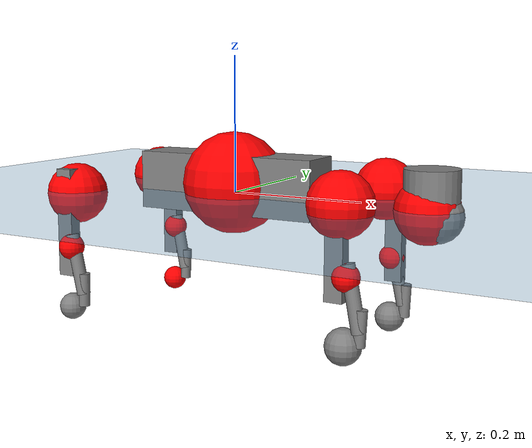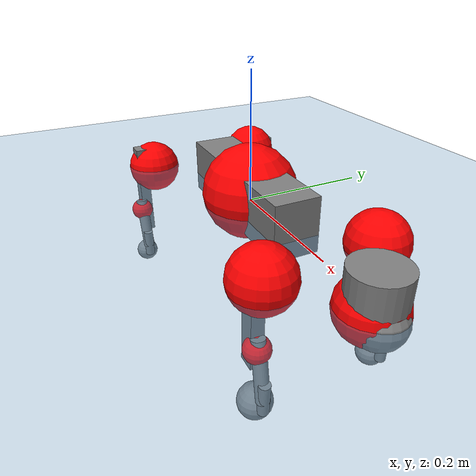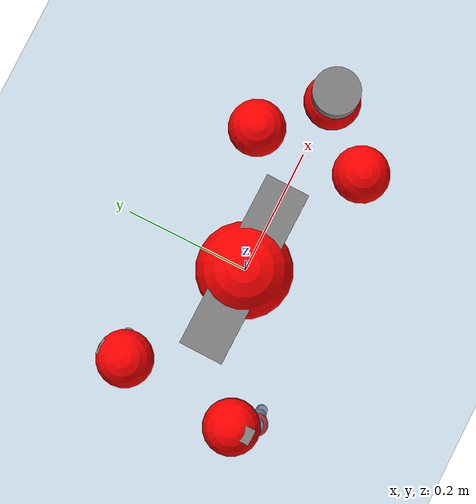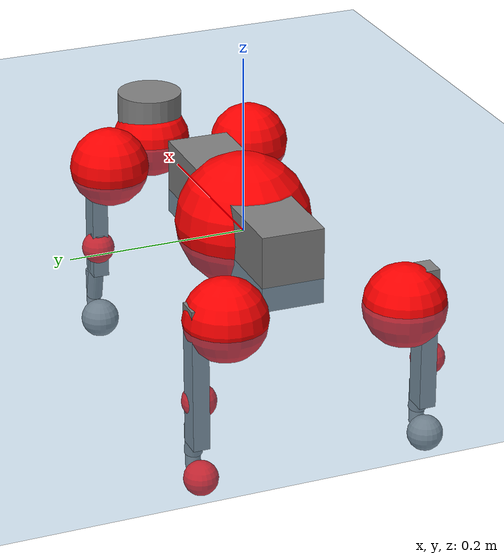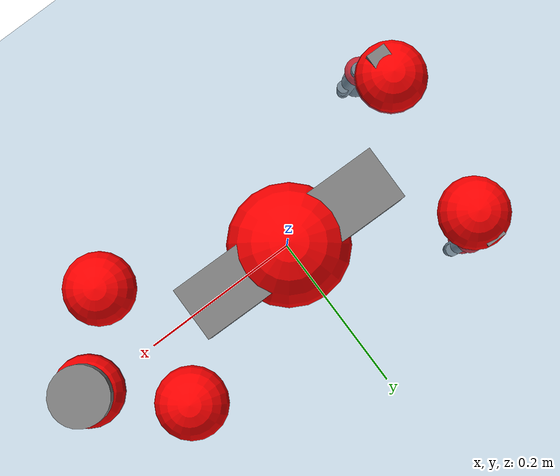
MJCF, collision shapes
<mujoco model="go2">
  <compiler angle="radian" assetdir="assets" balanceinertia="true" inertiafromgeom="false"/>

  <option timestep="0.005" density="1.2" viscosity="2e-05"/>

  <size nkey="1"/>

  <visual>
    <quality shadowsize="8192"/>
    <map shadowclip="0.5"/>
  </visual>

  <default>
    <default class="/">
      <geom contype="0" conaffinity="0" group="1" solref="-1000 -80"/>
      <site size="0.01 0.005 0.005" group="5"/>
      <general forcelimited="true" biastype="affine" gainprm="20" biasprm="0 -20 -0.5"/>
      <default class="go2">
        <joint armature="0.01" damping="0.01" frictionloss="0.2"/>
        <geom condim="1" margin="0.001"/>
        <default class="visual">
          <geom type="mesh" group="2"/>
        </default>
        <default class="collision">
          <geom group="3"/>
          <default class="foot">
            <geom size="0.022 0 0" condim="6" priority="1" friction="0.8 0.02 0.01" solimp="0.015 1 0.022"/>
          </default>
        </default>
        <default class="reward_collision_sphere">
          <geom group="5" rgba="1 0 0 1"/>
        </default>
      </default>
    </default>
  </default>

  <asset>
    <texture type="skybox" colorspace="auto" name="//unnamed_texture_0" builtin="gradient" rgb1="0.95 0.95 0.95" rgb2="0.95 0.95 0.95" width="100" height="600"/>
    <texture type="2d" colorspace="auto" name="texplane" builtin="checker" rgb1="0.345 0.575 0.748" rgb2="0.345 0.575 0.748" markrgb="1 1 1" width="512" height="512"/>
    <material name="MatPlane" class="/" texture="texplane" texuniform="true" texrepeat="2 2" specular="0.9"/>
    <material name="metal" class="/" rgba="0.9 0.95 0.95 1"/>
    <material name="black" class="/" rgba="0 0 0 1"/>
    <material name="white" class="/"/>
    <material name="gray" class="/" rgba="0.671705 0.692426 0.77427 1"/>
    <mesh name="base_0" class="/" file="base_0.obj"/>
    <mesh name="base_1" class="/" file="base_1.obj"/>
    <mesh name="base_2" class="/" file="base_2.obj"/>
    <mesh name="base_3" class="/" file="base_3.obj"/>
    <mesh name="base_4" class="/" file="base_4.obj"/>
    <mesh name="hip_0" class="/" file="hip_0.obj"/>
    <mesh name="hip_1" class="/" file="hip_1.obj"/>
    <mesh name="thigh_0" class="/" file="thigh_0.obj"/>
    <mesh name="thigh_1" class="/" file="thigh_1.obj"/>
    <mesh name="thigh_mirror_0" class="/" file="thigh_mirror_0.obj"/>
    <mesh name="thigh_mirror_1" class="/" file="thigh_mirror_1.obj"/>
    <mesh name="calf_0" class="/" file="calf_0.obj"/>
    <mesh name="calf_1" class="/" file="calf_1.obj"/>
    <mesh name="calf_mirror_0" class="/" file="calf_mirror_0.obj"/>
    <mesh name="calf_mirror_1" class="/" file="calf_mirror_1.obj"/>
    <mesh name="foot" class="/" file="foot.obj"/>
  </asset>

  <worldbody>
    <geom name="floor" class="/" size="100 100 0.125" type="plane" group="0" material="MatPlane"/>
    <light name="toplight_shadow" class="/" pos="0 0 5" dir="0.0990148 0.0990148 -0.990148" type="directional" ambient="0.04 0.04 0.04" diffuse="0.55 0.55 0.55" specular="0.12 0.12 0.12"/>
    <light name="toplight_fill" class="/" pos="0 0 5" dir="0.0990148 0.0990148 -0.990148" type="directional" castshadow="false" ambient="0.04 0.04 0.04" diffuse="0.3 0.3 0.3" specular="0.08 0.08 0.08"/>
    <body name="trunk" childclass="go2" pos="-0.00231352 0.000766299 0.014659" quat="0.999977 0.00207864 -0.001445 -0.00633225">
      <inertial pos="0.0210083 -0.0117912 -0.000532535" quat="0.0361289 0.698282 -0.0534116 0.712913" mass="2.7025" diaginertia="0.120424 0.0227262 0.000268498"/>
      <joint name="//unnamed_joint_0" type="free" armature="0" damping="0" frictionloss="0"/>
      <geom name="//unnamed_geom_1" class="visual" material="black" mesh="base_0"/>
      <geom name="//unnamed_geom_2" class="visual" material="black" mesh="base_1"/>
      <geom name="//unnamed_geom_3" class="visual" material="black" mesh="base_2"/>
      <geom name="//unnamed_geom_4" class="visual" material="white" mesh="base_3"/>
      <geom name="//unnamed_geom_5" class="visual" material="gray" mesh="base_4"/>
      <geom name="trunk_1" class="collision" size="0.141637 0.0352021 0.0429202" type="box"/>
      <geom name="trunk_2" class="collision" size="0.0376493 0.0338844" pos="0.302931 0 0.0042393" type="cylinder"/>
      <geom name="trunk_3" class="collision" size="0.0353903" pos="0.311434 0 -0.0254358"/>
      <geom name="//unnamed_geom_9" class="reward_collision_sphere" size="0.0752986"/>
      <geom name="//unnamed_geom_10" class="reward_collision_sphere" size="0.0451791" pos="0.297616 0 -0.0190768"/>
      <site name="imu" pos="-0.0443115 -0.0435964 0.0740684" size="0.00752986"/>
      <camera name="track" pos="0 -1.54423 0" quat="0.707107 0.707107 0 0" mode="trackcom"/>
      <camera name="ego_camera" pos="0.331629 0 0.0190768" quat="-0.5 -0.5 0.5 0.5"/>
      <body name="FL_hip" pos="0.204628 0.0302144 -0.00633648" quat="1 0.000374931 -0.000362647 -0.000357211">
        <inertial pos="0.00738043 0.00275874 0.014177" quat="0.541489 0.522764 0.471377 0.459686" mass="0.316248" diaginertia="0.00115147 0.000192154 7.22856e-06"/>
        <joint name="FL_hip_joint" pos="0 0 0" axis="0.998073 -0.0531718 -0.0319857" stiffness="0.0531274" range="-1.05335 0.884347" armature="0.00767516" damping="0.0610835" frictionloss="0.0899223"/>
        <geom name="//unnamed_geom_11" class="visual" material="metal" mesh="hip_0"/>
        <geom name="//unnamed_geom_12" class="visual" material="gray" mesh="hip_1"/>
        <geom name="//unnamed_geom_13" class="collision" size="0.0346373 0.0150597" pos="0 0.061769 0" quat="0.707107 0.707107 0 0" type="cylinder"/>
        <geom name="//unnamed_geom_14" class="reward_collision_sphere" size="0.0451791" pos="0 0.0540479 0"/>
        <body name="FL_thigh" pos="0.0115434 0.0667713 -0.0111972" quat="1 -0.000350967 3.57986e-05 -0.00035153">
          <inertial pos="-0.0037478 -0.0167552 -0.0128134" quat="0.819868 0.105661 -0.0124158 0.562581" mass="0.539933" diaginertia="0.00891027 0.00184958 1.5935e-05"/>
          <joint name="FL_thigh_joint" pos="0 0 0" axis="-0.00703798 0.999975 -0.000117179" stiffness="0.00301446" range="-1.40364 3.5409" armature="0.0109554" damping="0" frictionloss="0.151953"/>
          <geom name="//unnamed_geom_15" class="visual" material="metal" mesh="thigh_0"/>
          <geom name="//unnamed_geom_16" class="visual" material="gray" mesh="thigh_1"/>
          <geom name="//unnamed_geom_17" class="collision" size="0.080193 0.00922407 0.0128008" pos="0 0 -0.0451485" quat="0.707107 0 0.707107 0" type="box"/>
          <body name="FL_calf" pos="-0.00508073 0.000609099 -0.0910222" quat="1 0.000587048 0.000336937 0.000166134">
            <inertial pos="0.0225104 0.0134979 -0.0593717" quat="0.709178 0.000291842 -0.00182242 0.705027" mass="0.104328" diaginertia="0.00237282 0.000394807 7.25048e-07"/>
            <joint name="FL_calf_joint" pos="0 0 0" axis="0.0230881 0.99968 0.010318" stiffness="0.0153407" range="-2.41154 -1.01196" armature="0.00974835" damping="0.0271737" frictionloss="0.0372245"/>
            <geom name="//unnamed_geom_18" class="visual" material="gray" mesh="calf_0"/>
            <geom name="//unnamed_geom_19" class="visual" material="black" mesh="calf_1"/>
            <geom name="FL_calf0" class="collision" size="0.00903583 0.0451791" pos="0.00850332 0 -0.0254358" quat="0.994493 0 -0.104807 0" type="cylinder"/>
            <geom name="//unnamed_geom_21" class="collision" size="0.00828284 0.024472" pos="0.0212583 0 -0.0627416" quat="0.999688 0 0.0249974 0" type="cylinder"/>
            <geom name="//unnamed_geom_22" class="visual" pos="0 0 -0.090297" quat="1 0 0 0" material="black" mesh="foot"/>
            <geom name="FL_foot" class="foot" size="0.0218694" pos="-0.00212583 0 -0.090297"/>
            <geom name="//unnamed_geom_24" class="reward_collision_sphere" size="0.0188246"/>
            <geom name="//unnamed_geom_25" class="reward_collision_sphere" size="0.0188246" pos="-0.00212583 0 -0.090297"/>
            <site name="FL_foot" class="foot" pos="-0.00212583 0 -0.090297" size="0.00752986"/>
          </body>
        </body>
      </body>
      <body name="FR_hip" pos="0.21403 -0.0371489 -0.00474097" quat="0.999972 -0.00713828 0.00234606 0.00058079">
        <inertial pos="0.00064192 -0.00382861 0.0035594" quat="0.529919 0.500971 0.527352 0.436021" mass="0.250996" diaginertia="0.00122672 0.000174234 6.77661e-06"/>
        <joint name="FR_hip_joint" pos="0 0 0" axis="0.99915 -0.0221556 0.0347651" stiffness="0.0599394" range="-0.756327 1.20843" armature="0.00608413" damping="0.0547881" frictionloss="0.079132"/>
        <geom name="//unnamed_geom_26" class="visual" pos="0 3.03323e-09 1.30101e-07" quat="4.63268e-05 1 0 0" material="metal" mesh="hip_0"/>
        <geom name="//unnamed_geom_27" class="visual" pos="0 4.91722e-09 -3.2179e-07" quat="4.63268e-05 1 0 0" material="gray" mesh="hip_1"/>
        <geom name="//unnamed_geom_28" class="collision" size="0.0346373 0.0150597" pos="0 -0.061769 0" quat="0.707107 0.707107 0 0" type="cylinder"/>
        <geom name="//unnamed_geom_29" class="reward_collision_sphere" size="0.0451791" pos="0 -0.0540479 0"/>
        <body name="FR_thigh" pos="0.000324295 -0.0649114 0.00108803" quat="0.999994 0.000381528 -0.000937609 -0.00337706">
          <inertial pos="0.00361345 0.0176219 -0.00846458" quat="0.553033 -0.00551069 0.103687 0.826664" mass="0.4182" diaginertia="0.00791335 0.0018114 1.08399e-05"/>
          <joint name="FR_thigh_joint" pos="0 0 0" axis="-0.000205824 -1 0.000729635" range="-3.50697 1.74203" armature="0.0105168" damping="0.0811987" frictionloss="0.236126"/>
          <geom name="//unnamed_geom_30" class="visual" material="metal" mesh="thigh_mirror_0"/>
          <geom name="//unnamed_geom_31" class="visual" material="gray" mesh="thigh_mirror_1"/>
          <geom name="//unnamed_geom_32" class="collision" size="0.080193 0.00922407 0.0128008" pos="0 0 -0.0451485" quat="0.707107 0 0.707107 0" type="box"/>
          <body name="FR_calf" pos="0.0144751 -0.00127115 -0.0921639" quat="0.999998 0.000289667 0.000673904 -0.00170717">
            <inertial pos="0.0112309 0.0137796 -0.0713744" quat="0.704799 0.0149616 -0.0726256 0.705521" mass="0.124687" diaginertia="0.0023921 0.000394785 9.48765e-07"/>
            <joint name="FR_calf_joint" pos="0 0 0" axis="-0.0107986 -0.999924 -0.0058923" stiffness="0.0199433" range="0.843968 2.7695" armature="0.00784319" damping="0.0555996" frictionloss="0.207834"/>
            <geom name="//unnamed_geom_33" class="visual" material="gray" mesh="calf_mirror_0"/>
            <geom name="//unnamed_geom_34" class="visual" material="black" mesh="calf_mirror_1"/>
            <geom name="FR_calf0" class="collision" size="0.00978881 0.0451791" pos="0.0106291 0 -0.0254358" quat="0.995004 0 -0.0998334 0" type="cylinder"/>
            <geom name="//unnamed_geom_36" class="collision" size="0.00828284 0.024472" pos="0.0212583 0 -0.0627416" quat="0.999688 0 0.0249974 0" type="cylinder"/>
            <geom name="//unnamed_geom_37" class="visual" pos="0 0 -0.090297" quat="1 0 0 0" material="black" mesh="foot"/>
            <geom name="FR_foot" class="foot" size="0.0247225" pos="-0.00212583 0 -0.090297"/>
            <geom name="//unnamed_geom_39" class="reward_collision_sphere" size="0.0188246"/>
            <geom name="//unnamed_geom_40" class="reward_collision_sphere" size="0.0188246" pos="-0.00212583 0 -0.090297"/>
            <site name="FR_foot" class="foot" pos="-0.00212583 0 -0.090297" size="0.00752986"/>
          </body>
        </body>
      </body>
      <body name="RL_hip" pos="-0.203535 0.0458302 -0.0103457" quat="0.999997 -0.00121445 -0.00193428 -0.00129159">
        <inertial pos="0.0109588 0.014607 0.0146899" quat="0.494709 0.522475 0.499973 0.481985" mass="0.328752" diaginertia="0.00145413 0.000166617 8.29217e-06"/>
        <joint name="RL_hip_joint" pos="0 0 0" axis="-0.99806 0.0591729 -0.0193679" range="-0.795886 0.779057" armature="0.00289308" damping="0.0060774" frictionloss="0.142775"/>
        <geom name="//unnamed_geom_41" class="visual" pos="-5.56657e-09 0 -1.09118e-06" quat="4.63268e-05 0 1 0" material="metal" mesh="hip_0"/>
        <geom name="//unnamed_geom_42" class="visual" pos="-9.02408e-09 0 -9.67718e-07" quat="4.63268e-05 0 1 0" material="gray" mesh="hip_1"/>
        <geom name="//unnamed_geom_43" class="collision" size="0.0346373 0.0150597" pos="0 0.061769 0" quat="0.707107 0.707107 0 0" type="cylinder"/>
        <geom name="//unnamed_geom_44" class="reward_collision_sphere" size="0.0451791" pos="0 0.0540479 0"/>
        <body name="RL_thigh" pos="0.000240044 0.0861382 -0.0144022" quat="0.999986 -0.00360765 0.00167901 0.00346157">
          <inertial pos="-0.0193984 -0.0066551 0.00140639" quat="0.828945 0.0842574 -0.0195161 0.552602" mass="0.397815" diaginertia="0.00536174 0.00124199 8.43354e-06"/>
          <joint name="RL_thigh_joint" pos="0 0 0" axis="0.00138469 0.997063 -0.0765729" range="-0.335152 4.51934" armature="0.00661381" damping="0.0827699" frictionloss="0.0968822"/>
          <geom name="//unnamed_geom_45" class="visual" material="metal" mesh="thigh_0"/>
          <geom name="//unnamed_geom_46" class="visual" material="gray" mesh="thigh_1"/>
          <geom name="//unnamed_geom_47" class="collision" size="0.080193 0.00922407 0.0128008" pos="0 0 -0.0451485" quat="0.707107 0 0.707107 0" type="box"/>
          <body name="RL_calf" pos="0.00909431 -0.00587957 -0.0790306" quat="0.999984 -0.000573007 0.00153664 0.00539225">
            <inertial pos="0.0209959 -0.0105466 -0.0450421" quat="0.668184 -0.028079 -0.0130371 0.743351" mass="0.115167" diaginertia="0.00231339 0.000498109 7.51529e-07"/>
            <joint name="RL_calf_joint" pos="0 0 0" axis="0.00376792 0.999988 -0.00318887" stiffness="0.0161771" range="-2.78432 -0.522261" armature="0.00283505" damping="0.0779362" frictionloss="0.143504"/>
            <geom name="//unnamed_geom_48" class="visual" material="gray" mesh="calf_0"/>
            <geom name="//unnamed_geom_49" class="visual" material="black" mesh="calf_1"/>
            <geom name="RL_calf0" class="collision" size="0.00978881 0.0451791" pos="0.0106291 0 -0.0254358" quat="0.995004 0 -0.0998334 0" type="cylinder"/>
            <geom name="//unnamed_geom_51" class="collision" size="0.00828284 0.024472" pos="0.0212583 0 -0.0627416" quat="0.999688 0 0.0249974 0" type="cylinder"/>
            <geom name="//unnamed_geom_52" class="visual" pos="0 0 -0.090297" quat="1 0 0 0" material="black" mesh="foot"/>
            <geom name="RL_foot" class="foot" size="0.0127661" pos="-0.00212583 0 -0.090297"/>
            <geom name="//unnamed_geom_54" class="reward_collision_sphere" size="0.0188246"/>
            <geom name="//unnamed_geom_55" class="reward_collision_sphere" size="0.0188246" pos="-0.00212583 0 -0.090297"/>
            <site name="RL_foot" class="foot" pos="-0.00212583 0 -0.090297" size="0.00752986"/>
          </body>
        </body>
      </body>
      <body name="RR_hip" pos="-0.221216 -0.0386043 -0.0197196" quat="0.999999 -0.0010174 -0.000759523 0.000427869">
        <inertial pos="0.0173723 0.00742064 -0.00160022" quat="0.543147 0.447005 0.494359 0.510672" mass="0.283359" diaginertia="0.000808784 0.000133484 4.82377e-06"/>
        <joint name="RR_hip_joint" pos="0 0 0" axis="-0.996893 -0.0522099 0.0589776" range="-0.901502 1.04005" armature="0.0076232" damping="0.0234213" frictionloss="0.0336578"/>
        <geom name="//unnamed_geom_56" class="visual" pos="5.5565e-09 3.03323e-09 -1.22128e-06" quat="2.14617e-09 4.63268e-05 4.63268e-05 -1" material="metal" mesh="hip_0"/>
        <geom name="//unnamed_geom_57" class="visual" pos="9.04898e-09 4.91722e-09 -6.45928e-07" quat="2.14617e-09 4.63268e-05 4.63268e-05 -1" material="gray" mesh="hip_1"/>
        <geom name="//unnamed_geom_58" class="collision" size="0.0346373 0.0150597" pos="0 -0.061769 0" quat="0.707107 0.707107 0 0" type="cylinder"/>
        <geom name="//unnamed_geom_59" class="reward_collision_sphere" size="0.0451791" pos="0 -0.0540479 0"/>
        <body name="RR_thigh" pos="0.00232655 -0.0789362 0.00428522" quat="0.999999 -0.000898604 -0.000250879 -0.00063873">
          <inertial pos="-0.0108442 0.0254045 -0.000818224" quat="0.562325 -0.00682698 0.0396153 0.825938" mass="0.623868" diaginertia="0.00726812 0.00169793 1.2161e-05"/>
          <joint name="RR_thigh_joint" pos="0 0 0" axis="0.0293603 -0.9994 -0.0183514" range="-4.53019 0.746137" armature="0.00825545" damping="0.0321863" frictionloss="0.185013"/>
          <geom name="//unnamed_geom_60" class="visual" material="metal" mesh="thigh_mirror_0"/>
          <geom name="//unnamed_geom_61" class="visual" material="gray" mesh="thigh_mirror_1"/>
          <geom name="//unnamed_geom_62" class="collision" size="0.080193 0.00922407 0.0128008" pos="0 0 -0.0451485" quat="0.707107 0 0.707107 0" type="box"/>
          <body name="RR_calf" pos="0.013874 -0.0109864 -0.0797147" quat="0.999969 0.00265659 -0.00597282 0.00444964">
            <inertial pos="0.00128389 -0.000823913 -0.0607034" quat="0.709799 0.0256148 0.0600329 0.701374" mass="0.0954319" diaginertia="0.00186041 0.00032057 7.56332e-07"/>
            <joint name="RR_calf_joint" pos="0 0 0" axis="0.0505276 -0.997136 0.0562682" stiffness="0.0690194" range="0.587024 2.81048" armature="0.00770141" damping="0.072609" frictionloss="0.186111"/>
            <geom name="//unnamed_geom_63" class="visual" material="gray" mesh="calf_mirror_0"/>
            <geom name="//unnamed_geom_64" class="visual" material="black" mesh="calf_mirror_1"/>
            <geom name="RR_calf0" class="collision" size="0.00978881 0.0451791" pos="0.0106291 0 -0.0254358" quat="0.995004 0 -0.0998334 0" type="cylinder"/>
            <geom name="//unnamed_geom_66" class="collision" size="0.00828284 0.024472" pos="0.0212583 0 -0.0627416" quat="0.999688 0 0.0249974 0" type="cylinder"/>
            <geom name="//unnamed_geom_67" class="visual" pos="0 0 -0.090297" quat="1 0 0 0" material="black" mesh="foot"/>
            <geom name="RR_foot" class="foot" size="0.0194813" pos="-0.00212583 0 -0.090297"/>
            <geom name="//unnamed_geom_69" class="reward_collision_sphere" size="0.0188246"/>
            <geom name="//unnamed_geom_70" class="reward_collision_sphere" size="0.0188246" pos="-0.00212583 0 -0.090297"/>
            <site name="RR_foot" class="foot" pos="-0.00212583 0 -0.090297" size="0.00752986"/>
          </body>
        </body>
      </body>
    </body>
  </worldbody>

  <contact>
    <pair class="/" geom1="floor" geom2="FL_foot" name="//unnamed_contact_0"/>
    <pair class="/" geom1="floor" geom2="FR_foot" name="//unnamed_contact_1"/>
    <pair class="/" geom1="floor" geom2="RL_foot" name="//unnamed_contact_2"/>
    <pair class="/" geom1="floor" geom2="RR_foot" name="//unnamed_contact_3"/>
  </contact>

  <actuator>
    <general name="FL_hip" class="/" joint="FL_hip_joint" forcerange="-17.7024 17.7024" gainprm="13.7206" biasprm="0 -13.7206 -0.420442"/>
    <general name="FL_thigh" class="/" joint="FL_thigh_joint" forcerange="-15.6473 15.6473" gainprm="13.7206" biasprm="0 -13.7206 -0.420442"/>
    <general name="FL_calf" class="/" joint="FL_calf_joint" forcerange="-23.2762 23.2762" gainprm="13.7206" biasprm="0 -13.7206 -0.420442"/>
    <general name="FR_hip" class="/" joint="FR_hip_joint" forcerange="-19.8309 19.8309" gainprm="13.7206" biasprm="0 -13.7206 -0.420442"/>
    <general name="FR_thigh" class="/" joint="FR_thigh_joint" forcerange="-12.3447 12.3447" gainprm="13.7206" biasprm="0 -13.7206 -0.420442"/>
    <general name="FR_calf" class="/" joint="FR_calf_joint" forcerange="-33.536 33.536" gainprm="13.7206" biasprm="0 -13.7206 -0.420442"/>
    <general name="RL_hip" class="/" joint="RL_hip_joint" forcerange="-18.1178 18.1178" gainprm="13.7206" biasprm="0 -13.7206 -0.420442"/>
    <general name="RL_thigh" class="/" joint="RL_thigh_joint" forcerange="-27.5598 27.5598" gainprm="13.7206" biasprm="0 -13.7206 -0.420442"/>
    <general name="RL_calf" class="/" joint="RL_calf_joint" forcerange="-17.3659 17.3659" gainprm="13.7206" biasprm="0 -13.7206 -0.420442"/>
    <general name="RR_hip" class="/" joint="RR_hip_joint" forcerange="-18.4511 18.4511" gainprm="13.7206" biasprm="0 -13.7206 -0.420442"/>
    <general name="RR_thigh" class="/" joint="RR_thigh_joint" forcerange="-21.7277 21.7277" gainprm="13.7206" biasprm="0 -13.7206 -0.420442"/>
    <general name="RR_calf" class="/" joint="RR_calf_joint" forcerange="-22.7512 22.7512" gainprm="13.7206" biasprm="0 -13.7206 -0.420442"/>
  </actuator>

  <sensor>
    <gyro site="imu" name="imu_angular_velocity"/>
    <velocimeter site="imu" name="imu_linear_velocity"/>
    <framelinvel objtype="site" objname="FL_foot" name="FL_foot_global_linear_velocity"/>
    <framelinvel objtype="site" objname="FR_foot" name="FR_foot_global_linear_velocity"/>
    <framelinvel objtype="site" objname="RL_foot" name="RL_foot_global_linear_velocity"/>
    <framelinvel objtype="site" objname="RR_foot" name="RR_foot_global_linear_velocity"/>
  </sensor>

  <keyframe>
    <key name="home" qpos="0 0 0.325 1 0 0 0 0.1 0.8 -1.5 -0.1 -0.8 1.5 -0.1 0.8 -1.5 0.1 -0.8 1.5"/>
  </keyframe>
</mujoco>
